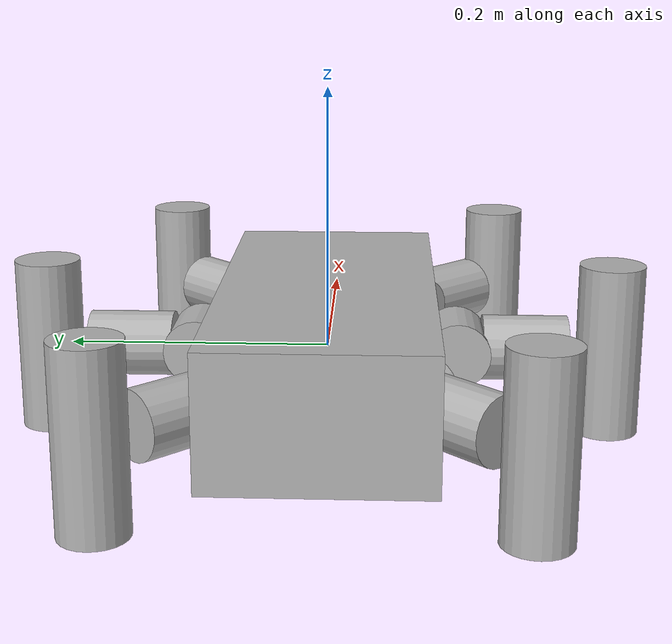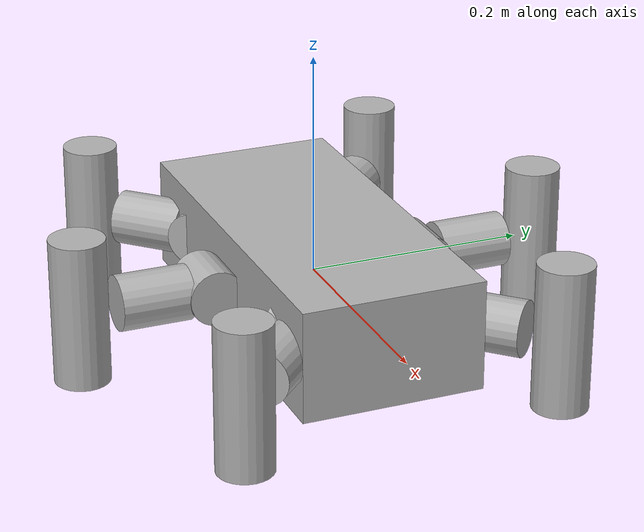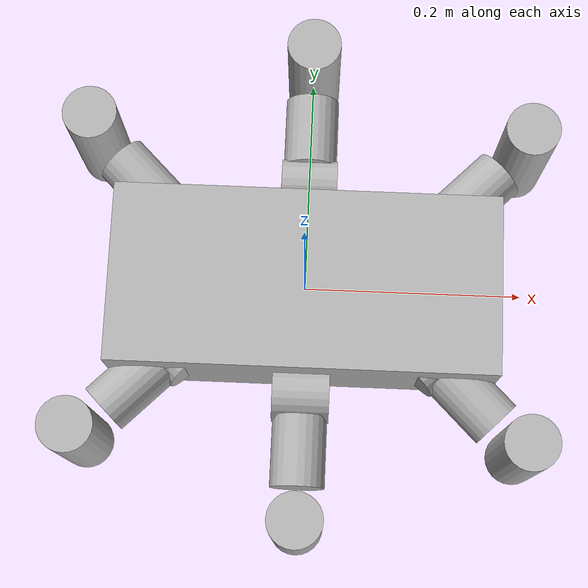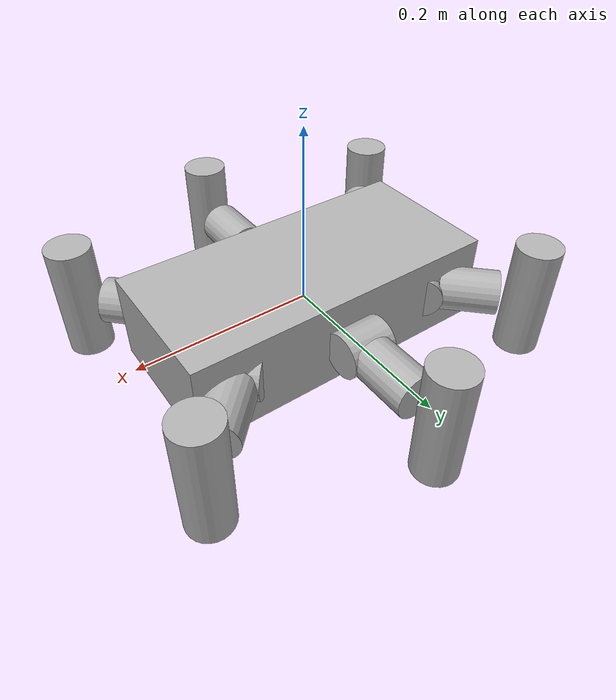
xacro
<?xml version="1.0" encoding="UTF-8" ?>

<robot xmlns:xacro="http://wwww.ros.org/wiki/xacro" name="HexPet">

    <!-- parameters -->
    <xacro:property name="pi" value="3.1415926535897931"/>
    <xacro:property name="body_length_x" value="0.3556"/>
    <xacro:property name="body_length_y" value="0.165"/>
    <xacro:property name="coxa_length" value="0.052" />
	<xacro:property name="femur_length" value="0.065" />
	<xacro:property name="tibia_length" value="0.133" />

    <gazebo>
        <plugin name="gazebo_ros_control" filename="libgazebo_ros_control.so">
            <robotNamespace>/HexPet</robotNamespace>
        </plugin>
    </gazebo>

    <link name="body_link">
        <visual>
            <origin xyz="0.0 0.0 0.0" rpy="0.0 0.0 0.0"/>
            <geometry>
                <box size="${body_length_x} ${body_length_y} 0.1"/>
            </geometry>
            <material name="">
                <color rgba="0.7 0.7 0.7 1"/>
            </material>
        </visual>
        <collision>
            <origin xyz="0.0 0.0 0.0" rpy="0.0 0.0 0.0"/>
            <geometry>
                <box size="${body_length_x} ${body_length_y} 0.1"/>
            </geometry>
            <material name="">
                <color rgba="0.7 0.7 0.7 1"/>
            </material>
        </collision>
        <inertial>
            <origin xyz="0.0 0.0 0.0" rpy="0.0 0.0 0.0" />
            <mass value="0.00001"/>
            <inertia
                ixx="1.0" ixy="0.0"  ixz="0.0"
                iyy="1.0" iyz="0.0"
                izz="1.0" />
        </inertial>
    </link>
    <gazebo reference="body_link">
        <material>Gazebo/DarkGrey</material>
    </gazebo>

    <!-- Joint properties -->
	<xacro:property name="joint_lower_limit" value="-${3.14}" />
	<xacro:property name="joint_upper_limit" value="${3.14}" />
	<xacro:property name="joint_effort" value="6.0" />
	<xacro:property name="joint_velocity" value="0.524" />

	<!-- Leg macro -->
	<xacro:macro name="leg" params="side position x y angle axis">

		<!-- leg position -->
		<joint name="leg_center_joint_${side}${position}" type="fixed">
			<origin xyz="${x} ${y} 0.0" rpy="0.0 0.0 0.0" />
			<parent link="body_link" />
			<child link="leg_center_${side}${position}" />
		</joint>

		<link name="leg_center_${side}${position}" >
            <inertial>
                <origin xyz="0.0 0.0 0.0" rpy="0.0 0.0 0.0" />
                <mass value="0.00001"/>
                <inertia
                    ixx="1.0" ixy="0.0"  ixz="0.0"
                    iyy="1.0" iyz="0.0"
                    izz="1.0" />
            </inertial>
        </link>

		<!-- coxa -->
		<joint name="coxa_joint_${side}${position}" type="revolute">
			<origin xyz="0.0 0.0 0.0" rpy="0.0 0.0 ${angle}" />
			<parent link="leg_center_${side}${position}" />
			<child link="coxa_${side}${position}" />
			<axis xyz="0.0 0.0 1.0" />
			<limit lower="${joint_lower_limit}" upper="${joint_upper_limit}" effort="${joint_effort}" velocity="${joint_velocity}" />
		</joint>
		<transmission name="coxa_transmission_${side}${position}">
            <type>transmission_interface/SimpleTransmission</type>
            <joint name="coxa_joint_${side}${position}">
                <hardwareInterface>hardware_interface/EffortJointInterface</hardwareInterface>
            </joint>
            <actuator name="coxa_motor_${side}${position}">
                <hardwareInterface>hardware_interface/EffortJointInterface</hardwareInterface>
                <mechanicalReduction>1</mechanicalReduction>
            </actuator>
        </transmission>
        <link name="coxa_${side}${position}">
            <visual>
                <origin xyz="0.0 0.0 0.0" rpy="${pi/2} 0.0 0.0"/>
                <geometry>
                    <cylinder radius="0.025" length="${coxa_length}"/>
                </geometry>
                <material name="">
                    <color rgba="0.7 0.7 0.7 1"/>
                </material>
            </visual>
            <collision>
                <origin xyz="0.0 0.0 0.0" rpy="${pi/2} 0.0 0.0" />
                <geometry>
                    <cylinder radius="0.025" length="${coxa_length}"/>
                </geometry>
                <material name="">
                    <color rgba="0.7 0.7 0.7 1" />
                </material>
            </collision>
            <inertial>
                <origin xyz="0.0 0.0 0.0" rpy="0.0 0.0 0.0" />
                <mass value="0.00001"/>
                <inertia
                    ixx="1.0" ixy="0.0"  ixz="0.0"
                    iyy="1.0" iyz="0.0"
                    izz="1.0" />
            </inertial>
        </link>
        <gazebo reference="coxa_${side}${position}">
            <material>Gazebo/DarkGrey</material>
        </gazebo>

		<!-- femur -->
		<joint name="femur_joint_${side}${position}" type="revolute">
			<origin xyz="${coxa_length} 0.0 0.0" rpy="-${pi/2} ${pi/2} 0.0" />
			<parent link="coxa_${side}${position}" />
			<child link="femur_${side}${position}" />
			<axis xyz="0.0 0.0 ${-axis}" />
			<limit lower="${joint_lower_limit}" upper="${joint_upper_limit}" effort="${joint_effort}" velocity="${joint_velocity}" />
		</joint>
		<transmission name="femur_transmission_${side}${position}">
            <type>transmission_interface/SimpleTransmission</type>
            <joint name="femur_joint_${side}${position}">
                <hardwareInterface>hardware_interface/EffortJointInterface</hardwareInterface>
            </joint>
            <actuator name="femur_motor_${side}${position}">
                <hardwareInterface>hardware_interface/EffortJointInterface</hardwareInterface>
                <mechanicalReduction>1</mechanicalReduction>
            </actuator>
        </transmission>
        <link name="femur_${side}${position}">
            <visual>
                <origin xyz="0.0 0.0 0.0" rpy="${pi/2} 0.0 0.0"/>
                <geometry>
                    <cylinder radius="0.025" length="${femur_length}"/>
                </geometry>
                <material name="">
                    <color rgba="0.7 0.7 0.7 1"/>
                </material>
            </visual>
            <collision>
                <origin xyz="0.0 0.0 0.0" rpy="${pi/2} 0.0 0.0" />
                <geometry>
                    <cylinder radius="0.025" length="${femur_length}"/>
                </geometry>
                <material name="">
                    <color rgba="0.7 0.7 0.7 1" />
                </material>
            </collision>
            <inertial>
                <origin xyz="0.0 0.0 0.0" rpy="0.0 0.0 0.0" />
                <mass value="0.00001"/>
                <inertia
                    ixx="1.0" ixy="0.0"  ixz="0.0"
                    iyy="1.0" iyz="0.0"
                    izz="1.0" />
            </inertial>
        </link>
        <gazebo reference="femur_${side}${position}">
            <material>Gazebo/DarkGrey</material>
        </gazebo>

		<!-- tibia -->
		<joint name="tibia_joint_${side}${position}" type="revolute">
			<origin xyz="0.0 -${femur_length} 0.0" rpy="${pi} 0.0 0.0" />
			<parent link="femur_${side}${position}" />
			<child link="tibia_${side}${position}" />
			<axis xyz="0.0 0.0 ${axis}" />
			<limit lower="${joint_lower_limit}" upper="${joint_upper_limit}" effort="${joint_effort}" velocity="${joint_velocity}" />
		</joint>
		<transmission name="tibia_transmission_${side}${position}">
            <type>transmission_interface/SimpleTransmission</type>
            <joint name="tibia_joint_${side}${position}">
                <hardwareInterface>hardware_interface/EffortJointInterface</hardwareInterface>
            </joint>
            <actuator name="tibia_motor_${side}${position}">
                <hardwareInterface>hardware_interface/EffortJointInterface</hardwareInterface>
                <mechanicalReduction>1</mechanicalReduction>
            </actuator>
        </transmission>
        <link name="tibia_${side}${position}">
            <visual>
                <origin xyz="0.0 0.0 0.0" rpy="${pi/2} 0.0 ${pi/2}"/>
                <geometry>
                    <cylinder radius="0.025" length="${tibia_length}"/>
                </geometry>
                <material name="">
                    <color rgba="0.7 0.7 0.7 1"/>
                </material>
            </visual>
            <collision>
                <origin xyz="0.0 0.0 0.0" rpy="${pi/2} 0.0 ${pi/2}" />
                <geometry>
                    <cylinder radius="0.025" length="${tibia_length}"/>
                </geometry>
                <material name="">
                    <color rgba="0.7 0.7 0.7 1" />
                </material>
            </collision>
            <inertial>
                <origin xyz="0.0 0.0 0.0" rpy="0.0 0.0 0.0" />
                <mass value="0.00001"/>
                <inertia
                    ixx="1.0" ixy="0.0"  ixz="0.0"
                    iyy="1.0" iyz="0.0"
                    izz="1.0" />
            </inertial>
        </link>
        <gazebo reference="tibia_${side}${position}">
            <material>Gazebo/DarkGrey</material>
        </gazebo>

	</xacro:macro>

<!-- Build robot model -->
	<xacro:leg side="R" position="R" x="-0.120" y="-0.060" angle="-${pi*3/4}" axis="1" />
	<xacro:leg side="R" position="M" x="0.0" y="-0.100" angle="-${pi/2}" axis="1" />
	<xacro:leg side="R" position="F" x="0.120" y="-0.060" angle="-${pi/4}" axis="1" />

	<xacro:leg side="L" position="R" x="-0.120" y="0.060" angle="${pi*3/4}" axis="-1" />
	<xacro:leg side="L" position="M" x="0.0" y="0.100" angle="${pi/2}" axis="-1" />
	<xacro:leg side="L" position="F" x="0.120" y="0.060" angle="${pi/4}" axis="-1" />

</robot>
